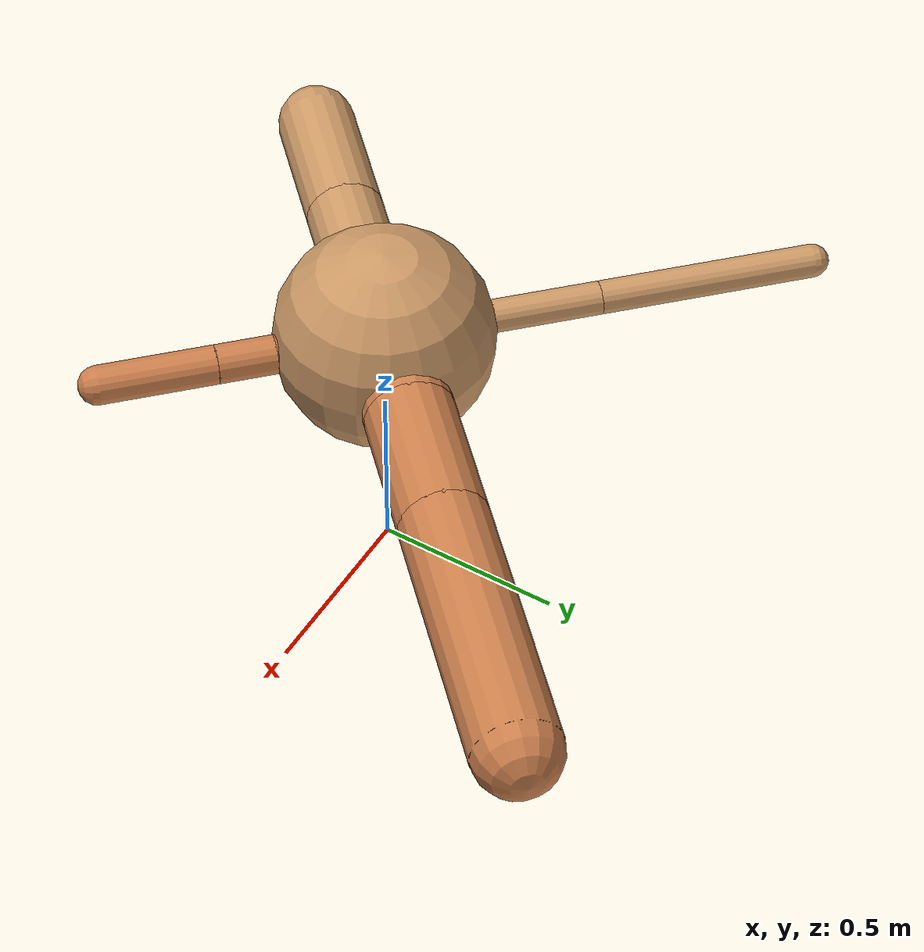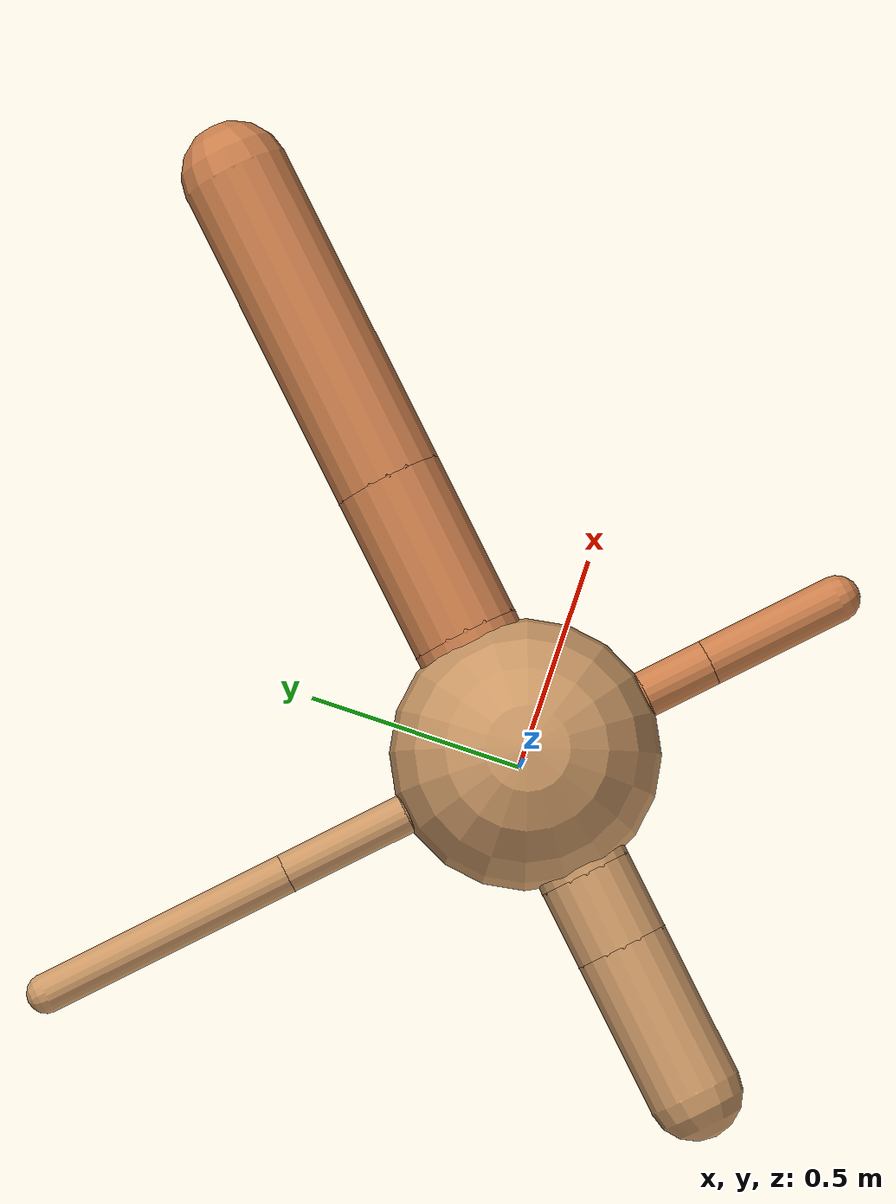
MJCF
<?xml version="1.0" ?>
<mujoco model="ant">

	<compiler angle="degree" coordinate="local" inertiafromgeom="true"/>

	<option integrator="RK4" timestep="0.01"/>

	<custom>

		<numeric data="0.0 0.0 0.55 1.0 0.0 0.0 0.0 0.0 1.0 0.0 -1.0 0.0 -1.0 0.0 1.0" name="init_qpos"/>

	</custom>

	<default>

		<joint armature="1" damping="1" limited="true"/>

		<geom conaffinity="0" condim="3" density="5.0" friction="1.5 0.1 0.1" margin="0.01" rgba="0.8 0.6 0.4 1"/>

	</default>

	<worldbody>

		<body name="torso" pos="0 0 0.75">

			<geom name="torso_geom" pos="0 0 0" size="0.28929629917104577" type="sphere"/>

			<!--joint armature="0" damping="0" limited="false" margin="0.01" name="root" pos="0 0 0" type="free"/-->

			<body name="front_left_leg" pos="0 0 0">

				<geom fromto="0 0 0 0.2 0.2 0" name="aux_1_geom" size="0.11797208604276904" type="capsule" rgba=".8 .5 .3 1"/>

				<body name="aux_1" pos="0.2 0.2 0">

					<joint axis="0 0 1" name="hip_1" pos="0.0 0.0 0.0" range="-40 40" type="hinge"/>

					<geom fromto="0 0 0 0.2602277146715852 0.2602277146715852 0" name="left_leg_geom" size="0.11797208604276904" type="capsule" rgba=".8 .5 .3 1"/>

					<body pos="0.2602277146715852 0.2602277146715852 0" name="front_left_foot">

						<joint axis="-1 1 0" name="ankle_1" pos="0.0 0.0 0.0" range="30 100" type="hinge"/>

						<geom fromto="0 0 0 0.5204554293431704 0.5204554293431704 0" name="left_ankle_geom" size="0.11797208604276904" type="capsule" rgba=".8 .5 .3 1"/>

					</body>

				</body>

			</body>

			<body name="front_right_leg" pos="0 0 0">

				<geom fromto="0 0 0 -0.2 0.2 0" name="aux_2_geom" size="0.043091688918076985" type="capsule"/>

				<body name="aux_2" pos="-0.2 0.2 0">

					<joint axis="0 0 1" name="hip_2" pos="0.0 0.0 0.0" range="-40 40" type="hinge"/>

					<geom fromto="0 0 0 -0.20029627793740495 0.20029627793740495 0" name="right_leg_geom" size="0.043091688918076985" type="capsule"/>

					<body pos="-0.20029627793740495 0.20029627793740495 0" name="front_right_foot">

						<joint axis="1 1 0" name="ankle_2" pos="0.0 0.0 0.0" range="-100 -30" type="hinge"/>

						<geom fromto="0 0 0 -0.4005925558748099 0.4005925558748099 0" name="right_ankle_geom" size="0.043091688918076985" type="capsule"/>

					</body>

				</body>

			</body>

			<body name="left_back_leg" pos="0 0 0">

				<geom fromto="0 0 0 -0.2 -0.2 0" name="aux_3_geom" size="0.1021085451171684" type="capsule"/>

				<body name="aux_3" pos="-0.2 -0.2 0">

					<joint axis="0 0 1" name="hip_3" pos="0.0 0.0 0.0" range="-40 40" type="hinge"/>

					<geom fromto="0 0 0 -0.12182707852608621 -0.12182707852608621 0" name="back_leg_geom" size="0.1021085451171684" type="capsule"/>

					<body pos="-0.12182707852608621 -0.12182707852608621 0" name="left_back_foot">

						<joint axis="-1 1 0" name="ankle_3" pos="0.0 0.0 0.0" range="-100 -30" type="hinge"/>

						<geom fromto="0 0 0 -0.24365415705217242 -0.24365415705217242 0" name="third_ankle_geom" size="0.1021085451171684" type="capsule"/>

					</body>

				</body>

			</body>

			<body name="right_back_leg" pos="0 0 0">

				<geom fromto="0 0 0 0.2 -0.2 0" name="aux_4_geom" size="0.050548572162381865" type="capsule" rgba=".8 .5 .3 1"/>

				<body name="aux_4" pos="0.2 -0.2 0">

					<joint axis="0 0 1" name="hip_4" pos="0.0 0.0 0.0" range="-40 40" type="hinge"/>

					<geom fromto="0 0 0 0.107963985337533 -0.107963985337533 0" name="rightback_leg_geom" size="0.050548572162381865" type="capsule" rgba=".8 .5 .3 1"/>

					<body pos="0.107963985337533 -0.107963985337533 0" name="right_back_foot">

						<joint axis="1 1 0" name="ankle_4" pos="0.0 0.0 0.0" range="30 100" type="hinge"/>

						<geom fromto="0 0 0 0.215927970675066 -0.215927970675066 0" name="fourth_ankle_geom" size="0.050548572162381865" type="capsule" rgba=".8 .5 .3 1"/>

					</body>

				</body>

			</body>

		</body>

	</worldbody>

	<actuator>

		<motor ctrllimited="true" ctrlrange="-1.0 1.0" joint="hip_4" gear="150"/>

		<motor ctrllimited="true" ctrlrange="-1.0 1.0" joint="ankle_4" gear="150"/>

		<motor ctrllimited="true" ctrlrange="-1.0 1.0" joint="hip_1" gear="150"/>

		<motor ctrllimited="true" ctrlrange="-1.0 1.0" joint="ankle_1" gear="150"/>

		<motor ctrllimited="true" ctrlrange="-1.0 1.0" joint="hip_2" gear="150"/>

		<motor ctrllimited="true" ctrlrange="-1.0 1.0" joint="ankle_2" gear="150"/>

		<motor ctrllimited="true" ctrlrange="-1.0 1.0" joint="hip_3" gear="150"/>

		<motor ctrllimited="true" ctrlrange="-1.0 1.0" joint="ankle_3" gear="150"/>

	</actuator>

</mujoco>
